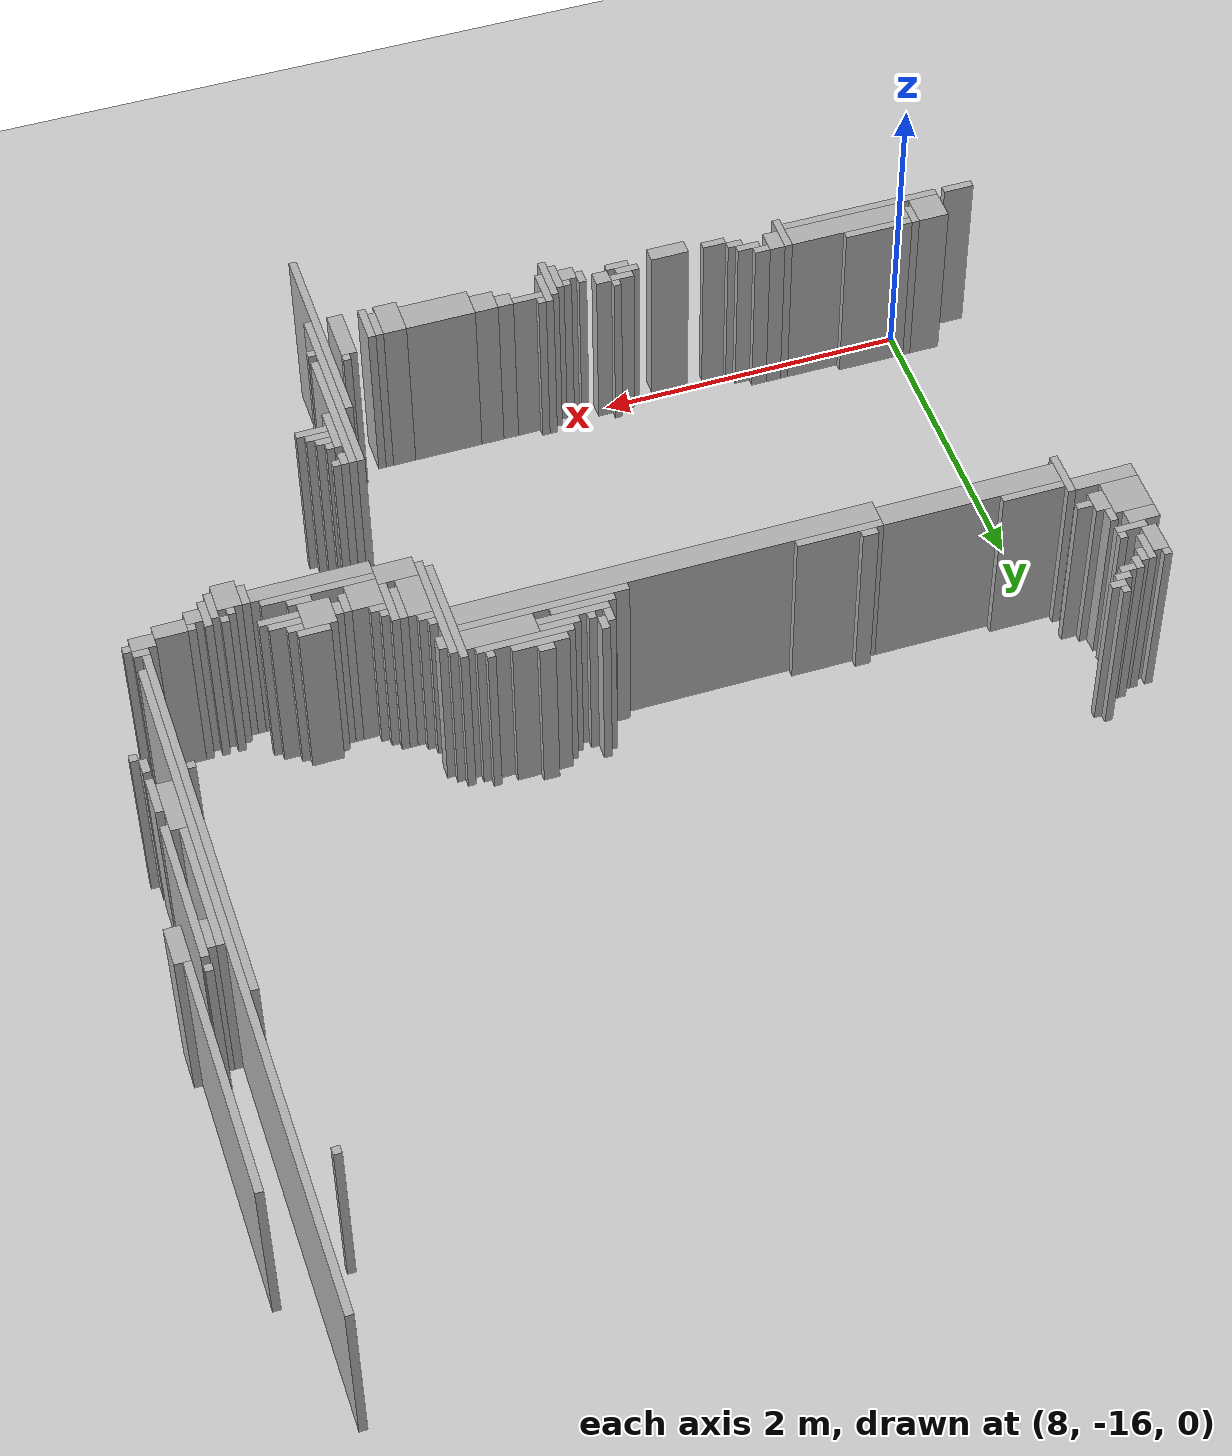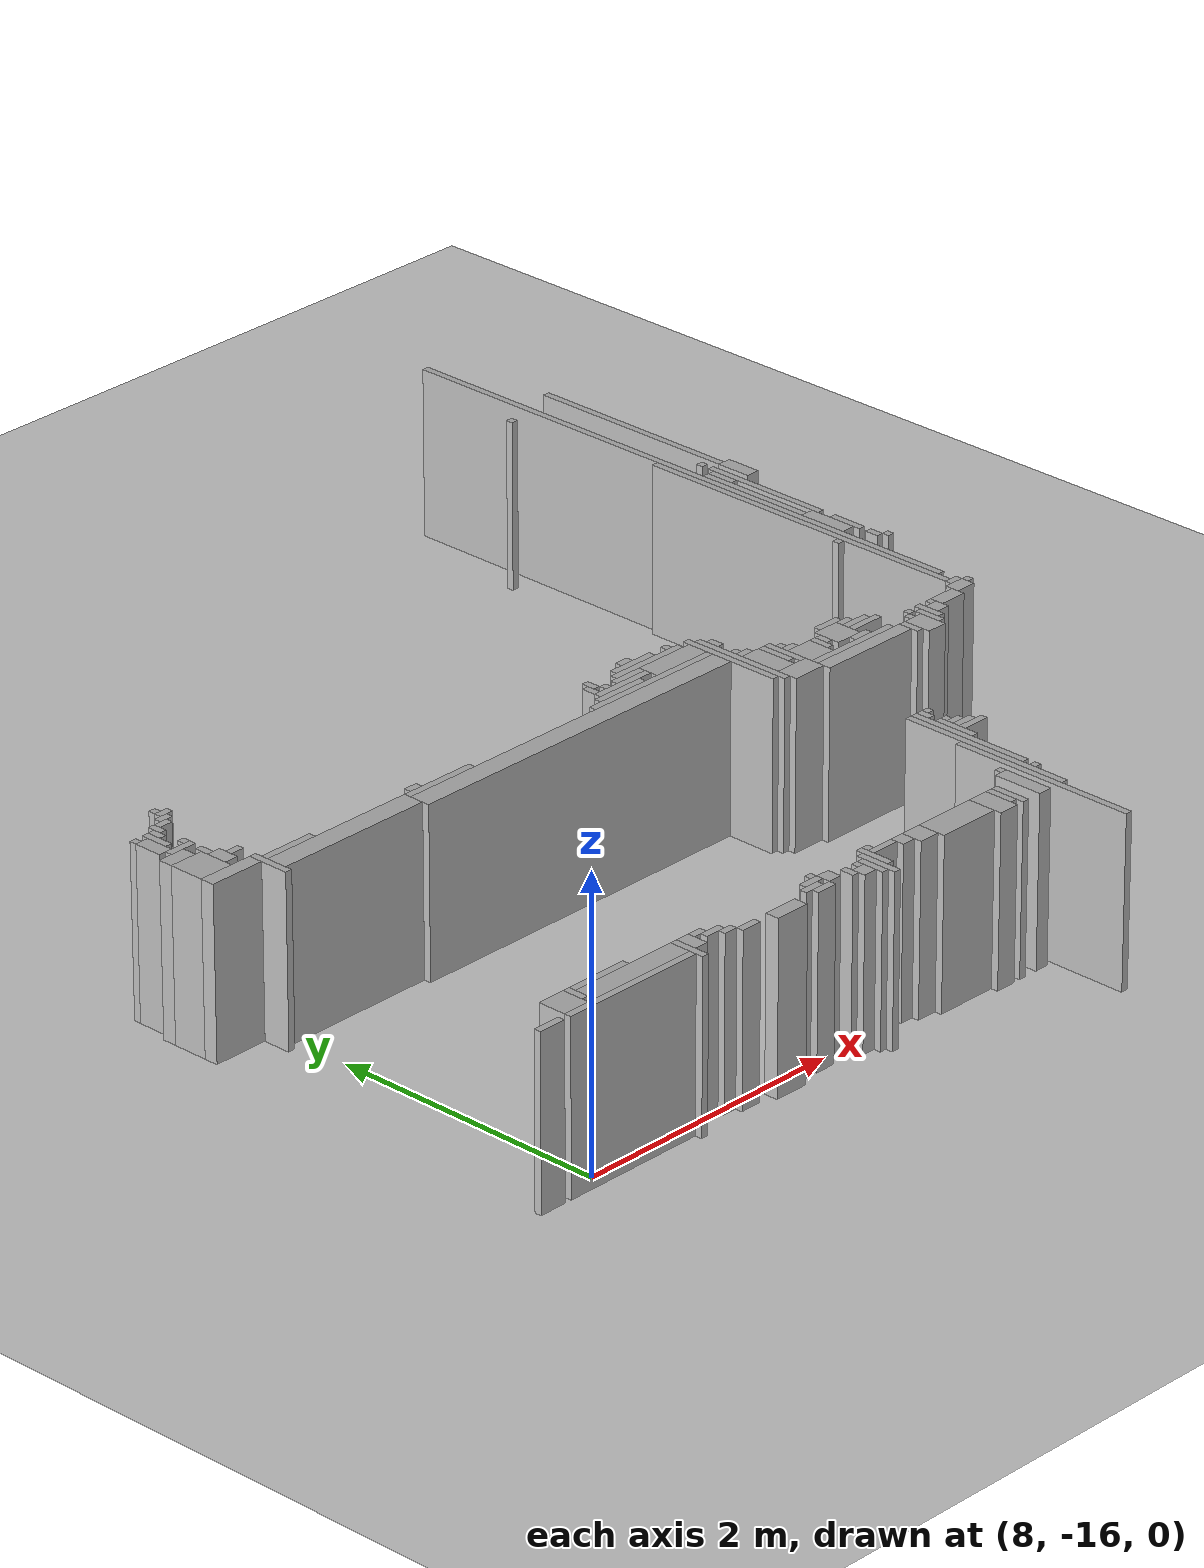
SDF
<sdf version="1.6">
 <world name="d10_floor">
  <include><uri>model://sun</uri></include>
  <include><uri>model://ground_plane</uri></include>
  <model name="d10_walls">
   <static>true</static>
   <link name="w265">
    <pose>11.850 -16.070 0.60 0 0 0</pose>
    <collision name="c"><geometry><box><size>0.050 1.350 1.20</size></box></geometry></collision>
    <visual name="v">
     <geometry><box><size>0.050 1.350 1.20</size></box></geometry>
     <material><ambient>0.6 0.6 0.6 1</ambient><diffuse>0.7 0.7 0.7 1</diffuse></material>
    </visual>
   </link>
   <link name="w337">
    <pose>10.350 -16.095 0.60 0 0 0</pose>
    <collision name="c"><geometry><box><size>0.050 0.300 1.20</size></box></geometry></collision>
    <visual name="v">
     <geometry><box><size>0.050 0.300 1.20</size></box></geometry>
     <material><ambient>0.6 0.6 0.6 1</ambient><diffuse>0.7 0.7 0.7 1</diffuse></material>
    </visual>
   </link>
   <link name="w356">
    <pose>10.300 -16.095 0.60 0 0 0</pose>
    <collision name="c"><geometry><box><size>0.050 0.200 1.20</size></box></geometry></collision>
    <visual name="v">
     <geometry><box><size>0.050 0.200 1.20</size></box></geometry>
     <material><ambient>0.6 0.6 0.6 1</ambient><diffuse>0.7 0.7 0.7 1</diffuse></material>
    </visual>
   </link>
   <link name="w357">
    <pose>11.400 -16.070 0.60 0 0 0</pose>
    <collision name="c"><geometry><box><size>0.150 0.250 1.20</size></box></geometry></collision>
    <visual name="v">
     <geometry><box><size>0.150 0.250 1.20</size></box></geometry>
     <material><ambient>0.6 0.6 0.6 1</ambient><diffuse>0.7 0.7 0.7 1</diffuse></material>
    </visual>
   </link>
   <link name="w358">
    <pose>11.550 -16.070 0.60 0 0 0</pose>
    <collision name="c"><geometry><box><size>0.050 0.250 1.20</size></box></geometry></collision>
    <visual name="v">
     <geometry><box><size>0.050 0.250 1.20</size></box></geometry>
     <material><ambient>0.6 0.6 0.6 1</ambient><diffuse>0.7 0.7 0.7 1</diffuse></material>
    </visual>
   </link>
   <link name="w359">
    <pose>11.725 -16.020 0.60 0 0 0</pose>
    <collision name="c"><geometry><box><size>0.100 0.350 1.20</size></box></geometry></collision>
    <visual name="v">
     <geometry><box><size>0.100 0.350 1.20</size></box></geometry>
     <material><ambient>0.6 0.6 0.6 1</ambient><diffuse>0.7 0.7 0.7 1</diffuse></material>
    </visual>
   </link>
   <link name="w360">
    <pose>11.900 -15.570 0.60 0 0 0</pose>
    <collision name="c"><geometry><box><size>0.050 1.250 1.20</size></box></geometry></collision>
    <visual name="v">
     <geometry><box><size>0.050 1.250 1.20</size></box></geometry>
     <material><ambient>0.6 0.6 0.6 1</ambient><diffuse>0.7 0.7 0.7 1</diffuse></material>
    </visual>
   </link>
   <link name="w388">
    <pose>8.800 -16.020 0.60 0 0 0</pose>
    <collision name="c"><geometry><box><size>0.050 0.250 1.20</size></box></geometry></collision>
    <visual name="v">
     <geometry><box><size>0.050 0.250 1.20</size></box></geometry>
     <material><ambient>0.6 0.6 0.6 1</ambient><diffuse>0.7 0.7 0.7 1</diffuse></material>
    </visual>
   </link>
   <link name="w389">
    <pose>9.550 -16.095 0.60 0 0 0</pose>
    <collision name="c"><geometry><box><size>0.250 0.100 1.20</size></box></geometry></collision>
    <visual name="v">
     <geometry><box><size>0.250 0.100 1.20</size></box></geometry>
     <material><ambient>0.6 0.6 0.6 1</ambient><diffuse>0.7 0.7 0.7 1</diffuse></material>
    </visual>
   </link>
   <link name="w390">
    <pose>10.225 -16.095 0.60 0 0 0</pose>
    <collision name="c"><geometry><box><size>0.100 0.100 1.20</size></box></geometry></collision>
    <visual name="v">
     <geometry><box><size>0.100 0.100 1.20</size></box></geometry>
     <material><ambient>0.6 0.6 0.6 1</ambient><diffuse>0.7 0.7 0.7 1</diffuse></material>
    </visual>
   </link>
   <link name="w391">
    <pose>10.400 -16.020 0.60 0 0 0</pose>
    <collision name="c"><geometry><box><size>0.050 0.250 1.20</size></box></geometry></collision>
    <visual name="v">
     <geometry><box><size>0.050 0.250 1.20</size></box></geometry>
     <material><ambient>0.6 0.6 0.6 1</ambient><diffuse>0.7 0.7 0.7 1</diffuse></material>
    </visual>
   </link>
   <link name="w392">
    <pose>11.100 -16.045 0.60 0 0 0</pose>
    <collision name="c"><geometry><box><size>0.450 0.200 1.20</size></box></geometry></collision>
    <visual name="v">
     <geometry><box><size>0.450 0.200 1.20</size></box></geometry>
     <material><ambient>0.6 0.6 0.6 1</ambient><diffuse>0.7 0.7 0.7 1</diffuse></material>
    </visual>
   </link>
   <link name="w393">
    <pose>11.500 -16.045 0.60 0 0 0</pose>
    <collision name="c"><geometry><box><size>0.050 0.200 1.20</size></box></geometry></collision>
    <visual name="v">
     <geometry><box><size>0.050 0.200 1.20</size></box></geometry>
     <material><ambient>0.6 0.6 0.6 1</ambient><diffuse>0.7 0.7 0.7 1</diffuse></material>
    </visual>
   </link>
   <link name="w420">
    <pose>7.575 -16.070 0.60 0 0 0</pose>
    <collision name="c"><geometry><box><size>0.200 0.050 1.20</size></box></geometry></collision>
    <visual name="v">
     <geometry><box><size>0.200 0.050 1.20</size></box></geometry>
     <material><ambient>0.6 0.6 0.6 1</ambient><diffuse>0.7 0.7 0.7 1</diffuse></material>
    </visual>
   </link>
   <link name="w421">
    <pose>8.250 -16.070 0.60 0 0 0</pose>
    <collision name="c"><geometry><box><size>1.050 0.050 1.20</size></box></geometry></collision>
    <visual name="v">
     <geometry><box><size>1.050 0.050 1.20</size></box></geometry>
     <material><ambient>0.6 0.6 0.6 1</ambient><diffuse>0.7 0.7 0.7 1</diffuse></material>
    </visual>
   </link>
   <link name="w422">
    <pose>9.250 -16.070 0.60 0 0 0</pose>
    <collision name="c"><geometry><box><size>0.150 0.050 1.20</size></box></geometry></collision>
    <visual name="v">
     <geometry><box><size>0.150 0.050 1.20</size></box></geometry>
     <material><ambient>0.6 0.6 0.6 1</ambient><diffuse>0.7 0.7 0.7 1</diffuse></material>
    </visual>
   </link>
   <link name="w423">
    <pose>9.900 -16.070 0.60 0 0 0</pose>
    <collision name="c"><geometry><box><size>0.150 0.050 1.20</size></box></geometry></collision>
    <visual name="v">
     <geometry><box><size>0.150 0.050 1.20</size></box></geometry>
     <material><ambient>0.6 0.6 0.6 1</ambient><diffuse>0.7 0.7 0.7 1</diffuse></material>
    </visual>
   </link>
   <link name="w424">
    <pose>10.150 -16.045 0.60 0 0 0</pose>
    <collision name="c"><geometry><box><size>0.050 0.100 1.20</size></box></geometry></collision>
    <visual name="v">
     <geometry><box><size>0.050 0.100 1.20</size></box></geometry>
     <material><ambient>0.6 0.6 0.6 1</ambient><diffuse>0.7 0.7 0.7 1</diffuse></material>
    </visual>
   </link>
   <link name="w425">
    <pose>10.800 -16.020 0.60 0 0 0</pose>
    <collision name="c"><geometry><box><size>0.150 0.150 1.20</size></box></geometry></collision>
    <visual name="v">
     <geometry><box><size>0.150 0.150 1.20</size></box></geometry>
     <material><ambient>0.6 0.6 0.6 1</ambient><diffuse>0.7 0.7 0.7 1</diffuse></material>
    </visual>
   </link>
   <link name="w445">
    <pose>7.825 -15.945 0.60 0 0 0</pose>
    <collision name="c"><geometry><box><size>0.200 0.200 1.20</size></box></geometry></collision>
    <visual name="v">
     <geometry><box><size>0.200 0.200 1.20</size></box></geometry>
     <material><ambient>0.6 0.6 0.6 1</ambient><diffuse>0.7 0.7 0.7 1</diffuse></material>
    </visual>
   </link>
   <link name="w446">
    <pose>8.375 -15.970 0.60 0 0 0</pose>
    <collision name="c"><geometry><box><size>0.800 0.150 1.20</size></box></geometry></collision>
    <visual name="v">
     <geometry><box><size>0.800 0.150 1.20</size></box></geometry>
     <material><ambient>0.6 0.6 0.6 1</ambient><diffuse>0.7 0.7 0.7 1</diffuse></material>
    </visual>
   </link>
   <link name="w447">
    <pose>8.875 -15.970 0.60 0 0 0</pose>
    <collision name="c"><geometry><box><size>0.100 0.150 1.20</size></box></geometry></collision>
    <visual name="v">
     <geometry><box><size>0.100 0.150 1.20</size></box></geometry>
     <material><ambient>0.6 0.6 0.6 1</ambient><diffuse>0.7 0.7 0.7 1</diffuse></material>
    </visual>
   </link>
   <link name="w448">
    <pose>9.125 -16.020 0.60 0 0 0</pose>
    <collision name="c"><geometry><box><size>0.100 0.050 1.20</size></box></geometry></collision>
    <visual name="v">
     <geometry><box><size>0.100 0.050 1.20</size></box></geometry>
     <material><ambient>0.6 0.6 0.6 1</ambient><diffuse>0.7 0.7 0.7 1</diffuse></material>
    </visual>
   </link>
   <link name="w449">
    <pose>9.850 -16.020 0.60 0 0 0</pose>
    <collision name="c"><geometry><box><size>0.150 0.050 1.20</size></box></geometry></collision>
    <visual name="v">
     <geometry><box><size>0.150 0.050 1.20</size></box></geometry>
     <material><ambient>0.6 0.6 0.6 1</ambient><diffuse>0.7 0.7 0.7 1</diffuse></material>
    </visual>
   </link>
   <link name="w450">
    <pose>10.025 -15.995 0.60 0 0 0</pose>
    <collision name="c"><geometry><box><size>0.100 0.100 1.20</size></box></geometry></collision>
    <visual name="v">
     <geometry><box><size>0.100 0.100 1.20</size></box></geometry>
     <material><ambient>0.6 0.6 0.6 1</ambient><diffuse>0.7 0.7 0.7 1</diffuse></material>
    </visual>
   </link>
   <link name="w451">
    <pose>10.250 -16.020 0.60 0 0 0</pose>
    <collision name="c"><geometry><box><size>0.050 0.050 1.20</size></box></geometry></collision>
    <visual name="v">
     <geometry><box><size>0.050 0.050 1.20</size></box></geometry>
     <material><ambient>0.6 0.6 0.6 1</ambient><diffuse>0.7 0.7 0.7 1</diffuse></material>
    </visual>
   </link>
   <link name="w452">
    <pose>10.675 -15.995 0.60 0 0 0</pose>
    <collision name="c"><geometry><box><size>0.100 0.100 1.20</size></box></geometry></collision>
    <visual name="v">
     <geometry><box><size>0.100 0.100 1.20</size></box></geometry>
     <material><ambient>0.6 0.6 0.6 1</ambient><diffuse>0.7 0.7 0.7 1</diffuse></material>
    </visual>
   </link>
   <link name="w464">
    <pose>7.950 -15.920 0.60 0 0 0</pose>
    <collision name="c"><geometry><box><size>0.050 0.150 1.20</size></box></geometry></collision>
    <visual name="v">
     <geometry><box><size>0.050 0.150 1.20</size></box></geometry>
     <material><ambient>0.6 0.6 0.6 1</ambient><diffuse>0.7 0.7 0.7 1</diffuse></material>
    </visual>
   </link>
   <link name="w465">
    <pose>9.050 -15.970 0.60 0 0 0</pose>
    <collision name="c"><geometry><box><size>0.150 0.050 1.20</size></box></geometry></collision>
    <visual name="v">
     <geometry><box><size>0.150 0.050 1.20</size></box></geometry>
     <material><ambient>0.6 0.6 0.6 1</ambient><diffuse>0.7 0.7 0.7 1</diffuse></material>
    </visual>
   </link>
   <link name="w466">
    <pose>9.900 -15.970 0.60 0 0 0</pose>
    <collision name="c"><geometry><box><size>0.150 0.050 1.20</size></box></geometry></collision>
    <visual name="v">
     <geometry><box><size>0.150 0.050 1.20</size></box></geometry>
     <material><ambient>0.6 0.6 0.6 1</ambient><diffuse>0.7 0.7 0.7 1</diffuse></material>
    </visual>
   </link>
   <link name="w467">
    <pose>10.525 -15.970 0.60 0 0 0</pose>
    <collision name="c"><geometry><box><size>0.200 0.050 1.20</size></box></geometry></collision>
    <visual name="v">
     <geometry><box><size>0.200 0.050 1.20</size></box></geometry>
     <material><ambient>0.6 0.6 0.6 1</ambient><diffuse>0.7 0.7 0.7 1</diffuse></material>
    </visual>
   </link>
   <link name="w483">
    <pose>8.975 -15.920 0.60 0 0 0</pose>
    <collision name="c"><geometry><box><size>0.100 0.050 1.20</size></box></geometry></collision>
    <visual name="v">
     <geometry><box><size>0.100 0.050 1.20</size></box></geometry>
     <material><ambient>0.6 0.6 0.6 1</ambient><diffuse>0.7 0.7 0.7 1</diffuse></material>
    </visual>
   </link>
   <link name="w484">
    <pose>9.950 -15.920 0.60 0 0 0</pose>
    <collision name="c"><geometry><box><size>0.050 0.050 1.20</size></box></geometry></collision>
    <visual name="v">
     <geometry><box><size>0.050 0.050 1.20</size></box></geometry>
     <material><ambient>0.6 0.6 0.6 1</ambient><diffuse>0.7 0.7 0.7 1</diffuse></material>
    </visual>
   </link>
   <link name="w485">
    <pose>10.450 -15.920 0.60 0 0 0</pose>
    <collision name="c"><geometry><box><size>0.050 0.050 1.20</size></box></geometry></collision>
    <visual name="v">
     <geometry><box><size>0.050 0.050 1.20</size></box></geometry>
     <material><ambient>0.6 0.6 0.6 1</ambient><diffuse>0.7 0.7 0.7 1</diffuse></material>
    </visual>
   </link>
   <link name="w486">
    <pose>11.950 -15.920 0.60 0 0 0</pose>
    <collision name="c"><geometry><box><size>0.050 0.050 1.20</size></box></geometry></collision>
    <visual name="v">
     <geometry><box><size>0.050 0.050 1.20</size></box></geometry>
     <material><ambient>0.6 0.6 0.6 1</ambient><diffuse>0.7 0.7 0.7 1</diffuse></material>
    </visual>
   </link>
   <link name="w495">
    <pose>8.200 -15.870 0.60 0 0 0</pose>
    <collision name="c"><geometry><box><size>0.450 0.050 1.20</size></box></geometry></collision>
    <visual name="v">
     <geometry><box><size>0.450 0.050 1.20</size></box></geometry>
     <material><ambient>0.6 0.6 0.6 1</ambient><diffuse>0.7 0.7 0.7 1</diffuse></material>
    </visual>
   </link>
   <link name="w501">
    <pose>11.750 -15.820 0.60 0 0 0</pose>
    <collision name="c"><geometry><box><size>0.050 0.050 1.20</size></box></geometry></collision>
    <visual name="v">
     <geometry><box><size>0.050 0.050 1.20</size></box></geometry>
     <material><ambient>0.6 0.6 0.6 1</ambient><diffuse>0.7 0.7 0.7 1</diffuse></material>
    </visual>
   </link>
   <link name="w502">
    <pose>11.950 -15.395 0.60 0 0 0</pose>
    <collision name="c"><geometry><box><size>0.050 0.900 1.20</size></box></geometry></collision>
    <visual name="v">
     <geometry><box><size>0.050 0.900 1.20</size></box></geometry>
     <material><ambient>0.6 0.6 0.6 1</ambient><diffuse>0.7 0.7 0.7 1</diffuse></material>
    </visual>
   </link>
   <link name="w556">
    <pose>12.000 -15.245 0.60 0 0 0</pose>
    <collision name="c"><geometry><box><size>0.050 0.300 1.20</size></box></geometry></collision>
    <visual name="v">
     <geometry><box><size>0.050 0.300 1.20</size></box></geometry>
     <material><ambient>0.6 0.6 0.6 1</ambient><diffuse>0.7 0.7 0.7 1</diffuse></material>
    </visual>
   </link>
   <link name="w559">
    <pose>12.125 -15.270 0.60 0 0 0</pose>
    <collision name="c"><geometry><box><size>0.200 0.050 1.20</size></box></geometry></collision>
    <visual name="v">
     <geometry><box><size>0.200 0.050 1.20</size></box></geometry>
     <material><ambient>0.6 0.6 0.6 1</ambient><diffuse>0.7 0.7 0.7 1</diffuse></material>
    </visual>
   </link>
   <link name="w560">
    <pose>12.100 -15.220 0.60 0 0 0</pose>
    <collision name="c"><geometry><box><size>0.150 0.050 1.20</size></box></geometry></collision>
    <visual name="v">
     <geometry><box><size>0.150 0.050 1.20</size></box></geometry>
     <material><ambient>0.6 0.6 0.6 1</ambient><diffuse>0.7 0.7 0.7 1</diffuse></material>
    </visual>
   </link>
   <link name="w562">
    <pose>12.075 -15.170 0.60 0 0 0</pose>
    <collision name="c"><geometry><box><size>0.100 0.050 1.20</size></box></geometry></collision>
    <visual name="v">
     <geometry><box><size>0.100 0.050 1.20</size></box></geometry>
     <material><ambient>0.6 0.6 0.6 1</ambient><diffuse>0.7 0.7 0.7 1</diffuse></material>
    </visual>
   </link>
   <link name="w563">
    <pose>12.050 -15.120 0.60 0 0 0</pose>
    <collision name="c"><geometry><box><size>0.050 0.050 1.20</size></box></geometry></collision>
    <visual name="v">
     <geometry><box><size>0.050 0.050 1.20</size></box></geometry>
     <material><ambient>0.6 0.6 0.6 1</ambient><diffuse>0.7 0.7 0.7 1</diffuse></material>
    </visual>
   </link>
   <link name="w565">
    <pose>12.000 -14.995 0.60 0 0 0</pose>
    <collision name="c"><geometry><box><size>0.050 0.100 1.20</size></box></geometry></collision>
    <visual name="v">
     <geometry><box><size>0.050 0.100 1.20</size></box></geometry>
     <material><ambient>0.6 0.6 0.6 1</ambient><diffuse>0.7 0.7 0.7 1</diffuse></material>
    </visual>
   </link>
   <link name="w567">
    <pose>12.050 -14.970 0.60 0 0 0</pose>
    <collision name="c"><geometry><box><size>0.050 0.050 1.20</size></box></geometry></collision>
    <visual name="v">
     <geometry><box><size>0.050 0.050 1.20</size></box></geometry>
     <material><ambient>0.6 0.6 0.6 1</ambient><diffuse>0.7 0.7 0.7 1</diffuse></material>
    </visual>
   </link>
   <link name="w583">
    <pose>12.950 -14.145 0.60 0 0 0</pose>
    <collision name="c"><geometry><box><size>0.150 0.200 1.20</size></box></geometry></collision>
    <visual name="v">
     <geometry><box><size>0.150 0.200 1.20</size></box></geometry>
     <material><ambient>0.6 0.6 0.6 1</ambient><diffuse>0.7 0.7 0.7 1</diffuse></material>
    </visual>
   </link>
   <link name="w585">
    <pose>12.850 -14.120 0.60 0 0 0</pose>
    <collision name="c"><geometry><box><size>0.050 0.150 1.20</size></box></geometry></collision>
    <visual name="v">
     <geometry><box><size>0.050 0.150 1.20</size></box></geometry>
     <material><ambient>0.6 0.6 0.6 1</ambient><diffuse>0.7 0.7 0.7 1</diffuse></material>
    </visual>
   </link>
   <link name="w586">
    <pose>13.050 -14.095 0.60 0 0 0</pose>
    <collision name="c"><geometry><box><size>0.050 0.200 1.20</size></box></geometry></collision>
    <visual name="v">
     <geometry><box><size>0.050 0.200 1.20</size></box></geometry>
     <material><ambient>0.6 0.6 0.6 1</ambient><diffuse>0.7 0.7 0.7 1</diffuse></material>
    </visual>
   </link>
   <link name="w587">
    <pose>12.450 -14.095 0.60 0 0 0</pose>
    <collision name="c"><geometry><box><size>0.750 0.100 1.20</size></box></geometry></collision>
    <visual name="v">
     <geometry><box><size>0.750 0.100 1.20</size></box></geometry>
     <material><ambient>0.6 0.6 0.6 1</ambient><diffuse>0.7 0.7 0.7 1</diffuse></material>
    </visual>
   </link>
   <link name="w588">
    <pose>13.100 -14.045 0.60 0 0 0</pose>
    <collision name="c"><geometry><box><size>0.050 0.200 1.20</size></box></geometry></collision>
    <visual name="v">
     <geometry><box><size>0.050 0.200 1.20</size></box></geometry>
     <material><ambient>0.6 0.6 0.6 1</ambient><diffuse>0.7 0.7 0.7 1</diffuse></material>
    </visual>
   </link>
   <link name="w589">
    <pose>11.950 -14.020 0.60 0 0 0</pose>
    <collision name="c"><geometry><box><size>0.250 0.150 1.20</size></box></geometry></collision>
    <visual name="v">
     <geometry><box><size>0.250 0.150 1.20</size></box></geometry>
     <material><ambient>0.6 0.6 0.6 1</ambient><diffuse>0.7 0.7 0.7 1</diffuse></material>
    </visual>
   </link>
   <link name="w590">
    <pose>13.175 -14.045 0.60 0 0 0</pose>
    <collision name="c"><geometry><box><size>0.100 0.100 1.20</size></box></geometry></collision>
    <visual name="v">
     <geometry><box><size>0.100 0.100 1.20</size></box></geometry>
     <material><ambient>0.6 0.6 0.6 1</ambient><diffuse>0.7 0.7 0.7 1</diffuse></material>
    </visual>
   </link>
   <link name="w592">
    <pose>11.800 -13.670 0.60 0 0 0</pose>
    <collision name="c"><geometry><box><size>0.050 0.750 1.20</size></box></geometry></collision>
    <visual name="v">
     <geometry><box><size>0.050 0.750 1.20</size></box></geometry>
     <material><ambient>0.6 0.6 0.6 1</ambient><diffuse>0.7 0.7 0.7 1</diffuse></material>
    </visual>
   </link>
   <link name="w593">
    <pose>12.425 -14.020 0.60 0 0 0</pose>
    <collision name="c"><geometry><box><size>0.700 0.050 1.20</size></box></geometry></collision>
    <visual name="v">
     <geometry><box><size>0.700 0.050 1.20</size></box></geometry>
     <material><ambient>0.6 0.6 0.6 1</ambient><diffuse>0.7 0.7 0.7 1</diffuse></material>
    </visual>
   </link>
   <link name="w594">
    <pose>12.950 -14.020 0.60 0 0 0</pose>
    <collision name="c"><geometry><box><size>0.050 0.050 1.20</size></box></geometry></collision>
    <visual name="v">
     <geometry><box><size>0.050 0.050 1.20</size></box></geometry>
     <material><ambient>0.6 0.6 0.6 1</ambient><diffuse>0.7 0.7 0.7 1</diffuse></material>
    </visual>
   </link>
   <link name="w595">
    <pose>13.325 -13.995 0.60 0 0 0</pose>
    <collision name="c"><geometry><box><size>0.200 0.100 1.20</size></box></geometry></collision>
    <visual name="v">
     <geometry><box><size>0.200 0.100 1.20</size></box></geometry>
     <material><ambient>0.6 0.6 0.6 1</ambient><diffuse>0.7 0.7 0.7 1</diffuse></material>
    </visual>
   </link>
   <link name="w596">
    <pose>11.750 -13.620 0.60 0 0 0</pose>
    <collision name="c"><geometry><box><size>0.050 0.750 1.20</size></box></geometry></collision>
    <visual name="v">
     <geometry><box><size>0.050 0.750 1.20</size></box></geometry>
     <material><ambient>0.6 0.6 0.6 1</ambient><diffuse>0.7 0.7 0.7 1</diffuse></material>
    </visual>
   </link>
   <link name="w597">
    <pose>12.175 -13.895 0.60 0 0 0</pose>
    <collision name="c"><geometry><box><size>0.200 0.200 1.20</size></box></geometry></collision>
    <visual name="v">
     <geometry><box><size>0.200 0.200 1.20</size></box></geometry>
     <material><ambient>0.6 0.6 0.6 1</ambient><diffuse>0.7 0.7 0.7 1</diffuse></material>
    </visual>
   </link>
   <link name="w598">
    <pose>12.550 -13.970 0.60 0 0 0</pose>
    <collision name="c"><geometry><box><size>0.150 0.050 1.20</size></box></geometry></collision>
    <visual name="v">
     <geometry><box><size>0.150 0.050 1.20</size></box></geometry>
     <material><ambient>0.6 0.6 0.6 1</ambient><diffuse>0.7 0.7 0.7 1</diffuse></material>
    </visual>
   </link>
   <link name="w599">
    <pose>13.000 -13.970 0.60 0 0 0</pose>
    <collision name="c"><geometry><box><size>0.050 0.050 1.20</size></box></geometry></collision>
    <visual name="v">
     <geometry><box><size>0.050 0.050 1.20</size></box></geometry>
     <material><ambient>0.6 0.6 0.6 1</ambient><diffuse>0.7 0.7 0.7 1</diffuse></material>
    </visual>
   </link>
   <link name="w600">
    <pose>13.200 -13.970 0.60 0 0 0</pose>
    <collision name="c"><geometry><box><size>0.050 0.050 1.20</size></box></geometry></collision>
    <visual name="v">
     <geometry><box><size>0.050 0.050 1.20</size></box></geometry>
     <material><ambient>0.6 0.6 0.6 1</ambient><diffuse>0.7 0.7 0.7 1</diffuse></material>
    </visual>
   </link>
   <link name="w601">
    <pose>13.500 -13.945 0.60 0 0 0</pose>
    <collision name="c"><geometry><box><size>0.150 0.100 1.20</size></box></geometry></collision>
    <visual name="v">
     <geometry><box><size>0.150 0.100 1.20</size></box></geometry>
     <material><ambient>0.6 0.6 0.6 1</ambient><diffuse>0.7 0.7 0.7 1</diffuse></material>
    </visual>
   </link>
   <link name="w603">
    <pose>11.900 -13.795 0.60 0 0 0</pose>
    <collision name="c"><geometry><box><size>0.150 0.300 1.20</size></box></geometry></collision>
    <visual name="v">
     <geometry><box><size>0.150 0.300 1.20</size></box></geometry>
     <material><ambient>0.6 0.6 0.6 1</ambient><diffuse>0.7 0.7 0.7 1</diffuse></material>
    </visual>
   </link>
   <link name="w604">
    <pose>12.050 -13.795 0.60 0 0 0</pose>
    <collision name="c"><geometry><box><size>0.050 0.300 1.20</size></box></geometry></collision>
    <visual name="v">
     <geometry><box><size>0.050 0.300 1.20</size></box></geometry>
     <material><ambient>0.6 0.6 0.6 1</ambient><diffuse>0.7 0.7 0.7 1</diffuse></material>
    </visual>
   </link>
   <link name="w605">
    <pose>12.300 -13.870 0.60 0 0 0</pose>
    <collision name="c"><geometry><box><size>0.050 0.150 1.20</size></box></geometry></collision>
    <visual name="v">
     <geometry><box><size>0.050 0.150 1.20</size></box></geometry>
     <material><ambient>0.6 0.6 0.6 1</ambient><diffuse>0.7 0.7 0.7 1</diffuse></material>
    </visual>
   </link>
   <link name="w606">
    <pose>12.475 -13.845 0.60 0 0 0</pose>
    <collision name="c"><geometry><box><size>0.200 0.200 1.20</size></box></geometry></collision>
    <visual name="v">
     <geometry><box><size>0.200 0.200 1.20</size></box></geometry>
     <material><ambient>0.6 0.6 0.6 1</ambient><diffuse>0.7 0.7 0.7 1</diffuse></material>
    </visual>
   </link>
   <link name="w607">
    <pose>13.600 -13.920 0.60 0 0 0</pose>
    <collision name="c"><geometry><box><size>0.050 0.050 1.20</size></box></geometry></collision>
    <visual name="v">
     <geometry><box><size>0.050 0.050 1.20</size></box></geometry>
     <material><ambient>0.6 0.6 0.6 1</ambient><diffuse>0.7 0.7 0.7 1</diffuse></material>
    </visual>
   </link>
   <link name="w608">
    <pose>12.000 -13.770 0.60 0 0 0</pose>
    <collision name="c"><geometry><box><size>0.050 0.250 1.20</size></box></geometry></collision>
    <visual name="v">
     <geometry><box><size>0.050 0.250 1.20</size></box></geometry>
     <material><ambient>0.6 0.6 0.6 1</ambient><diffuse>0.7 0.7 0.7 1</diffuse></material>
    </visual>
   </link>
   <link name="w609">
    <pose>12.350 -13.845 0.60 0 0 0</pose>
    <collision name="c"><geometry><box><size>0.050 0.100 1.20</size></box></geometry></collision>
    <visual name="v">
     <geometry><box><size>0.050 0.100 1.20</size></box></geometry>
     <material><ambient>0.6 0.6 0.6 1</ambient><diffuse>0.7 0.7 0.7 1</diffuse></material>
    </visual>
   </link>
   <link name="w610">
    <pose>12.700 -13.870 0.60 0 0 0</pose>
    <collision name="c"><geometry><box><size>0.250 0.050 1.20</size></box></geometry></collision>
    <visual name="v">
     <geometry><box><size>0.250 0.050 1.20</size></box></geometry>
     <material><ambient>0.6 0.6 0.6 1</ambient><diffuse>0.7 0.7 0.7 1</diffuse></material>
    </visual>
   </link>
   <link name="w611">
    <pose>13.525 -13.870 0.60 0 0 0</pose>
    <collision name="c"><geometry><box><size>0.100 0.050 1.20</size></box></geometry></collision>
    <visual name="v">
     <geometry><box><size>0.100 0.050 1.20</size></box></geometry>
     <material><ambient>0.6 0.6 0.6 1</ambient><diffuse>0.7 0.7 0.7 1</diffuse></material>
    </visual>
   </link>
   <link name="w614">
    <pose>12.675 -13.820 0.60 0 0 0</pose>
    <collision name="c"><geometry><box><size>0.200 0.050 1.20</size></box></geometry></collision>
    <visual name="v">
     <geometry><box><size>0.200 0.050 1.20</size></box></geometry>
     <material><ambient>0.6 0.6 0.6 1</ambient><diffuse>0.7 0.7 0.7 1</diffuse></material>
    </visual>
   </link>
   <link name="w615">
    <pose>13.500 -12.595 0.60 0 0 0</pose>
    <collision name="c"><geometry><box><size>0.050 2.500 1.20</size></box></geometry></collision>
    <visual name="v">
     <geometry><box><size>0.050 2.500 1.20</size></box></geometry>
     <material><ambient>0.6 0.6 0.6 1</ambient><diffuse>0.7 0.7 0.7 1</diffuse></material>
    </visual>
   </link>
   <link name="w620">
    <pose>12.125 -13.770 0.60 0 0 0</pose>
    <collision name="c"><geometry><box><size>0.100 0.050 1.20</size></box></geometry></collision>
    <visual name="v">
     <geometry><box><size>0.100 0.050 1.20</size></box></geometry>
     <material><ambient>0.6 0.6 0.6 1</ambient><diffuse>0.7 0.7 0.7 1</diffuse></material>
    </visual>
   </link>
   <link name="w621">
    <pose>12.625 -13.770 0.60 0 0 0</pose>
    <collision name="c"><geometry><box><size>0.100 0.050 1.20</size></box></geometry></collision>
    <visual name="v">
     <geometry><box><size>0.100 0.050 1.20</size></box></geometry>
     <material><ambient>0.6 0.6 0.6 1</ambient><diffuse>0.7 0.7 0.7 1</diffuse></material>
    </visual>
   </link>
   <link name="w628">
    <pose>12.100 -13.720 0.60 0 0 0</pose>
    <collision name="c"><geometry><box><size>0.050 0.050 1.20</size></box></geometry></collision>
    <visual name="v">
     <geometry><box><size>0.050 0.050 1.20</size></box></geometry>
     <material><ambient>0.6 0.6 0.6 1</ambient><diffuse>0.7 0.7 0.7 1</diffuse></material>
    </visual>
   </link>
   <link name="w629">
    <pose>12.525 -13.720 0.60 0 0 0</pose>
    <collision name="c"><geometry><box><size>0.200 0.050 1.20</size></box></geometry></collision>
    <visual name="v">
     <geometry><box><size>0.200 0.050 1.20</size></box></geometry>
     <material><ambient>0.6 0.6 0.6 1</ambient><diffuse>0.7 0.7 0.7 1</diffuse></material>
    </visual>
   </link>
   <link name="w630">
    <pose>13.550 -11.495 0.60 0 0 0</pose>
    <collision name="c"><geometry><box><size>0.050 4.500 1.20</size></box></geometry></collision>
    <visual name="v">
     <geometry><box><size>0.050 4.500 1.20</size></box></geometry>
     <material><ambient>0.6 0.6 0.6 1</ambient><diffuse>0.7 0.7 0.7 1</diffuse></material>
    </visual>
   </link>
   <link name="w648">
    <pose>7.900 -13.495 0.60 0 0 0</pose>
    <collision name="c"><geometry><box><size>0.050 0.300 1.20</size></box></geometry></collision>
    <visual name="v">
     <geometry><box><size>0.050 0.300 1.20</size></box></geometry>
     <material><ambient>0.6 0.6 0.6 1</ambient><diffuse>0.7 0.7 0.7 1</diffuse></material>
    </visual>
   </link>
   <link name="w649">
    <pose>10.400 -13.570 0.60 0 0 0</pose>
    <collision name="c"><geometry><box><size>2.650 0.150 1.20</size></box></geometry></collision>
    <visual name="v">
     <geometry><box><size>2.650 0.150 1.20</size></box></geometry>
     <material><ambient>0.6 0.6 0.6 1</ambient><diffuse>0.7 0.7 0.7 1</diffuse></material>
    </visual>
   </link>
   <link name="w650">
    <pose>11.875 -13.620 0.60 0 0 0</pose>
    <collision name="c"><geometry><box><size>0.100 0.050 1.20</size></box></geometry></collision>
    <visual name="v">
     <geometry><box><size>0.100 0.050 1.20</size></box></geometry>
     <material><ambient>0.6 0.6 0.6 1</ambient><diffuse>0.7 0.7 0.7 1</diffuse></material>
    </visual>
   </link>
   <link name="w658">
    <pose>8.500 -13.520 0.60 0 0 0</pose>
    <collision name="c"><geometry><box><size>1.150 0.150 1.20</size></box></geometry></collision>
    <visual name="v">
     <geometry><box><size>1.150 0.150 1.20</size></box></geometry>
     <material><ambient>0.6 0.6 0.6 1</ambient><diffuse>0.7 0.7 0.7 1</diffuse></material>
    </visual>
   </link>
   <link name="w659">
    <pose>11.850 -13.570 0.60 0 0 0</pose>
    <collision name="c"><geometry><box><size>0.050 0.050 1.20</size></box></geometry></collision>
    <visual name="v">
     <geometry><box><size>0.050 0.050 1.20</size></box></geometry>
     <material><ambient>0.6 0.6 0.6 1</ambient><diffuse>0.7 0.7 0.7 1</diffuse></material>
    </visual>
   </link>
   <link name="w667">
    <pose>9.350 -13.470 0.60 0 0 0</pose>
    <collision name="c"><geometry><box><size>0.550 0.050 1.20</size></box></geometry></collision>
    <visual name="v">
     <geometry><box><size>0.550 0.050 1.20</size></box></geometry>
     <material><ambient>0.6 0.6 0.6 1</ambient><diffuse>0.7 0.7 0.7 1</diffuse></material>
    </visual>
   </link>
   <link name="w668">
    <pose>11.200 -13.470 0.60 0 0 0</pose>
    <collision name="c"><geometry><box><size>1.050 0.050 1.20</size></box></geometry></collision>
    <visual name="v">
     <geometry><box><size>1.050 0.050 1.20</size></box></geometry>
     <material><ambient>0.6 0.6 0.6 1</ambient><diffuse>0.7 0.7 0.7 1</diffuse></material>
    </visual>
   </link>
   <link name="w677">
    <pose>7.675 -13.395 0.60 0 0 0</pose>
    <collision name="c"><geometry><box><size>0.400 0.100 1.20</size></box></geometry></collision>
    <visual name="v">
     <geometry><box><size>0.400 0.100 1.20</size></box></geometry>
     <material><ambient>0.6 0.6 0.6 1</ambient><diffuse>0.7 0.7 0.7 1</diffuse></material>
    </visual>
   </link>
   <link name="w678">
    <pose>8.125 -13.420 0.60 0 0 0</pose>
    <collision name="c"><geometry><box><size>0.400 0.050 1.20</size></box></geometry></collision>
    <visual name="v">
     <geometry><box><size>0.400 0.050 1.20</size></box></geometry>
     <material><ambient>0.6 0.6 0.6 1</ambient><diffuse>0.7 0.7 0.7 1</diffuse></material>
    </visual>
   </link>
   <link name="w679">
    <pose>9.175 -13.420 0.60 0 0 0</pose>
    <collision name="c"><geometry><box><size>0.100 0.050 1.20</size></box></geometry></collision>
    <visual name="v">
     <geometry><box><size>0.100 0.050 1.20</size></box></geometry>
     <material><ambient>0.6 0.6 0.6 1</ambient><diffuse>0.7 0.7 0.7 1</diffuse></material>
    </visual>
   </link>
   <link name="w680">
    <pose>10.975 -13.420 0.60 0 0 0</pose>
    <collision name="c"><geometry><box><size>0.400 0.050 1.20</size></box></geometry></collision>
    <visual name="v">
     <geometry><box><size>0.400 0.050 1.20</size></box></geometry>
     <material><ambient>0.6 0.6 0.6 1</ambient><diffuse>0.7 0.7 0.7 1</diffuse></material>
    </visual>
   </link>
   <link name="w681">
    <pose>11.500 -13.370 0.60 0 0 0</pose>
    <collision name="c"><geometry><box><size>0.450 0.150 1.20</size></box></geometry></collision>
    <visual name="v">
     <geometry><box><size>0.450 0.150 1.20</size></box></geometry>
     <material><ambient>0.6 0.6 0.6 1</ambient><diffuse>0.7 0.7 0.7 1</diffuse></material>
    </visual>
   </link>
   <link name="w682">
    <pose>11.850 -13.395 0.60 0 0 0</pose>
    <collision name="c"><geometry><box><size>0.050 0.100 1.20</size></box></geometry></collision>
    <visual name="v">
     <geometry><box><size>0.050 0.100 1.20</size></box></geometry>
     <material><ambient>0.6 0.6 0.6 1</ambient><diffuse>0.7 0.7 0.7 1</diffuse></material>
    </visual>
   </link>
   <link name="w686">
    <pose>11.050 -13.370 0.60 0 0 0</pose>
    <collision name="c"><geometry><box><size>0.450 0.050 1.20</size></box></geometry></collision>
    <visual name="v">
     <geometry><box><size>0.450 0.050 1.20</size></box></geometry>
     <material><ambient>0.6 0.6 0.6 1</ambient><diffuse>0.7 0.7 0.7 1</diffuse></material>
    </visual>
   </link>
   <link name="w698">
    <pose>7.600 -13.220 0.60 0 0 0</pose>
    <collision name="c"><geometry><box><size>0.250 0.250 1.20</size></box></geometry></collision>
    <visual name="v">
     <geometry><box><size>0.250 0.250 1.20</size></box></geometry>
     <material><ambient>0.6 0.6 0.6 1</ambient><diffuse>0.7 0.7 0.7 1</diffuse></material>
    </visual>
   </link>
   <link name="w699">
    <pose>10.850 -13.295 0.60 0 0 0</pose>
    <collision name="c"><geometry><box><size>0.050 0.100 1.20</size></box></geometry></collision>
    <visual name="v">
     <geometry><box><size>0.050 0.100 1.20</size></box></geometry>
     <material><ambient>0.6 0.6 0.6 1</ambient><diffuse>0.7 0.7 0.7 1</diffuse></material>
    </visual>
   </link>
   <link name="w700">
    <pose>10.950 -13.320 0.60 0 0 0</pose>
    <collision name="c"><geometry><box><size>0.050 0.050 1.20</size></box></geometry></collision>
    <visual name="v">
     <geometry><box><size>0.050 0.050 1.20</size></box></geometry>
     <material><ambient>0.6 0.6 0.6 1</ambient><diffuse>0.7 0.7 0.7 1</diffuse></material>
    </visual>
   </link>
   <link name="w701">
    <pose>11.150 -13.320 0.60 0 0 0</pose>
    <collision name="c"><geometry><box><size>0.250 0.050 1.20</size></box></geometry></collision>
    <visual name="v">
     <geometry><box><size>0.250 0.050 1.20</size></box></geometry>
     <material><ambient>0.6 0.6 0.6 1</ambient><diffuse>0.7 0.7 0.7 1</diffuse></material>
    </visual>
   </link>
   <link name="w721">
    <pose>7.775 -13.220 0.60 0 0 0</pose>
    <collision name="c"><geometry><box><size>0.100 0.150 1.20</size></box></geometry></collision>
    <visual name="v">
     <geometry><box><size>0.100 0.150 1.20</size></box></geometry>
     <material><ambient>0.6 0.6 0.6 1</ambient><diffuse>0.7 0.7 0.7 1</diffuse></material>
    </visual>
   </link>
   <link name="w722">
    <pose>10.900 -13.245 0.60 0 0 0</pose>
    <collision name="c"><geometry><box><size>0.050 0.100 1.20</size></box></geometry></collision>
    <visual name="v">
     <geometry><box><size>0.050 0.100 1.20</size></box></geometry>
     <material><ambient>0.6 0.6 0.6 1</ambient><diffuse>0.7 0.7 0.7 1</diffuse></material>
    </visual>
   </link>
   <link name="w723">
    <pose>11.375 -13.270 0.60 0 0 0</pose>
    <collision name="c"><geometry><box><size>0.600 0.050 1.20</size></box></geometry></collision>
    <visual name="v">
     <geometry><box><size>0.600 0.050 1.20</size></box></geometry>
     <material><ambient>0.6 0.6 0.6 1</ambient><diffuse>0.7 0.7 0.7 1</diffuse></material>
    </visual>
   </link>
   <link name="w743">
    <pose>7.875 -13.220 0.60 0 0 0</pose>
    <collision name="c"><geometry><box><size>0.100 0.050 1.20</size></box></geometry></collision>
    <visual name="v">
     <geometry><box><size>0.100 0.050 1.20</size></box></geometry>
     <material><ambient>0.6 0.6 0.6 1</ambient><diffuse>0.7 0.7 0.7 1</diffuse></material>
    </visual>
   </link>
   <link name="w744">
    <pose>11.300 -13.220 0.60 0 0 0</pose>
    <collision name="c"><geometry><box><size>0.350 0.050 1.20</size></box></geometry></collision>
    <visual name="v">
     <geometry><box><size>0.350 0.050 1.20</size></box></geometry>
     <material><ambient>0.6 0.6 0.6 1</ambient><diffuse>0.7 0.7 0.7 1</diffuse></material>
    </visual>
   </link>
   <link name="w745">
    <pose>11.600 -13.220 0.60 0 0 0</pose>
    <collision name="c"><geometry><box><size>0.050 0.050 1.20</size></box></geometry></collision>
    <visual name="v">
     <geometry><box><size>0.050 0.050 1.20</size></box></geometry>
     <material><ambient>0.6 0.6 0.6 1</ambient><diffuse>0.7 0.7 0.7 1</diffuse></material>
    </visual>
   </link>
   <link name="w784">
    <pose>11.275 -13.170 0.60 0 0 0</pose>
    <collision name="c"><geometry><box><size>0.100 0.050 1.20</size></box></geometry></collision>
    <visual name="v">
     <geometry><box><size>0.100 0.050 1.20</size></box></geometry>
     <material><ambient>0.6 0.6 0.6 1</ambient><diffuse>0.7 0.7 0.7 1</diffuse></material>
    </visual>
   </link>
   <link name="w814">
    <pose>7.750 -13.095 0.60 0 0 0</pose>
    <collision name="c"><geometry><box><size>0.050 0.100 1.20</size></box></geometry></collision>
    <visual name="v">
     <geometry><box><size>0.050 0.100 1.20</size></box></geometry>
     <material><ambient>0.6 0.6 0.6 1</ambient><diffuse>0.7 0.7 0.7 1</diffuse></material>
    </visual>
   </link>
   <link name="w815">
    <pose>13.750 -13.120 0.60 0 0 0</pose>
    <collision name="c"><geometry><box><size>0.050 0.050 1.20</size></box></geometry></collision>
    <visual name="v">
     <geometry><box><size>0.050 0.050 1.20</size></box></geometry>
     <material><ambient>0.6 0.6 0.6 1</ambient><diffuse>0.7 0.7 0.7 1</diffuse></material>
    </visual>
   </link>
   <link name="w832">
    <pose>7.575 -13.045 0.60 0 0 0</pose>
    <collision name="c"><geometry><box><size>0.200 0.100 1.20</size></box></geometry></collision>
    <visual name="v">
     <geometry><box><size>0.200 0.100 1.20</size></box></geometry>
     <material><ambient>0.6 0.6 0.6 1</ambient><diffuse>0.7 0.7 0.7 1</diffuse></material>
    </visual>
   </link>
   <link name="w833">
    <pose>13.700 -13.045 0.60 0 0 0</pose>
    <collision name="c"><geometry><box><size>0.050 0.100 1.20</size></box></geometry></collision>
    <visual name="v">
     <geometry><box><size>0.050 0.100 1.20</size></box></geometry>
     <material><ambient>0.6 0.6 0.6 1</ambient><diffuse>0.7 0.7 0.7 1</diffuse></material>
    </visual>
   </link>
   <link name="w854">
    <pose>7.675 -12.970 0.60 0 0 0</pose>
    <collision name="c"><geometry><box><size>0.200 0.050 1.20</size></box></geometry></collision>
    <visual name="v">
     <geometry><box><size>0.200 0.050 1.20</size></box></geometry>
     <material><ambient>0.6 0.6 0.6 1</ambient><diffuse>0.7 0.7 0.7 1</diffuse></material>
    </visual>
   </link>
   <link name="w855">
    <pose>13.450 -12.970 0.60 0 0 0</pose>
    <collision name="c"><geometry><box><size>0.050 0.050 1.20</size></box></geometry></collision>
    <visual name="v">
     <geometry><box><size>0.050 0.050 1.20</size></box></geometry>
     <material><ambient>0.6 0.6 0.6 1</ambient><diffuse>0.7 0.7 0.7 1</diffuse></material>
    </visual>
   </link>
   <link name="w862">
    <pose>7.575 -12.845 0.60 0 0 0</pose>
    <collision name="c"><geometry><box><size>0.100 0.200 1.20</size></box></geometry></collision>
    <visual name="v">
     <geometry><box><size>0.100 0.200 1.20</size></box></geometry>
     <material><ambient>0.6 0.6 0.6 1</ambient><diffuse>0.7 0.7 0.7 1</diffuse></material>
    </visual>
   </link>
   <link name="w863">
    <pose>7.750 -12.920 0.60 0 0 0</pose>
    <collision name="c"><geometry><box><size>0.050 0.050 1.20</size></box></geometry></collision>
    <visual name="v">
     <geometry><box><size>0.050 0.050 1.20</size></box></geometry>
     <material><ambient>0.6 0.6 0.6 1</ambient><diffuse>0.7 0.7 0.7 1</diffuse></material>
    </visual>
   </link>
   <link name="w864">
    <pose>13.700 -12.820 0.60 0 0 0</pose>
    <collision name="c"><geometry><box><size>0.050 0.250 1.20</size></box></geometry></collision>
    <visual name="v">
     <geometry><box><size>0.050 0.250 1.20</size></box></geometry>
     <material><ambient>0.6 0.6 0.6 1</ambient><diffuse>0.7 0.7 0.7 1</diffuse></material>
    </visual>
   </link>
   <link name="w868">
    <pose>7.650 -12.795 0.60 0 0 0</pose>
    <collision name="c"><geometry><box><size>0.050 0.200 1.20</size></box></geometry></collision>
    <visual name="v">
     <geometry><box><size>0.050 0.200 1.20</size></box></geometry>
     <material><ambient>0.6 0.6 0.6 1</ambient><diffuse>0.7 0.7 0.7 1</diffuse></material>
    </visual>
   </link>
   <link name="w869">
    <pose>13.625 -12.720 0.60 0 0 0</pose>
    <collision name="c"><geometry><box><size>0.100 0.350 1.20</size></box></geometry></collision>
    <visual name="v">
     <geometry><box><size>0.100 0.350 1.20</size></box></geometry>
     <material><ambient>0.6 0.6 0.6 1</ambient><diffuse>0.7 0.7 0.7 1</diffuse></material>
    </visual>
   </link>
   <link name="w878">
    <pose>7.700 -12.745 0.60 0 0 0</pose>
    <collision name="c"><geometry><box><size>0.050 0.100 1.20</size></box></geometry></collision>
    <visual name="v">
     <geometry><box><size>0.050 0.100 1.20</size></box></geometry>
     <material><ambient>0.6 0.6 0.6 1</ambient><diffuse>0.7 0.7 0.7 1</diffuse></material>
    </visual>
   </link>
   <link name="w881">
    <pose>7.550 -12.720 0.60 0 0 0</pose>
    <collision name="c"><geometry><box><size>0.050 0.050 1.20</size></box></geometry></collision>
    <visual name="v">
     <geometry><box><size>0.050 0.050 1.20</size></box></geometry>
     <material><ambient>0.6 0.6 0.6 1</ambient><diffuse>0.7 0.7 0.7 1</diffuse></material>
    </visual>
   </link>
   <link name="w882">
    <pose>7.750 -12.695 0.60 0 0 0</pose>
    <collision name="c"><geometry><box><size>0.050 0.100 1.20</size></box></geometry></collision>
    <visual name="v">
     <geometry><box><size>0.050 0.100 1.20</size></box></geometry>
     <material><ambient>0.6 0.6 0.6 1</ambient><diffuse>0.7 0.7 0.7 1</diffuse></material>
    </visual>
   </link>
   <link name="w885">
    <pose>7.825 -12.670 0.60 0 0 0</pose>
    <collision name="c"><geometry><box><size>0.100 0.050 1.20</size></box></geometry></collision>
    <visual name="v">
     <geometry><box><size>0.100 0.050 1.20</size></box></geometry>
     <material><ambient>0.6 0.6 0.6 1</ambient><diffuse>0.7 0.7 0.7 1</diffuse></material>
    </visual>
   </link>
   <link name="w887">
    <pose>7.875 -12.620 0.60 0 0 0</pose>
    <collision name="c"><geometry><box><size>0.100 0.050 1.20</size></box></geometry></collision>
    <visual name="v">
     <geometry><box><size>0.100 0.050 1.20</size></box></geometry>
     <material><ambient>0.6 0.6 0.6 1</ambient><diffuse>0.7 0.7 0.7 1</diffuse></material>
    </visual>
   </link>
   <link name="w888">
    <pose>7.925 -12.570 0.60 0 0 0</pose>
    <collision name="c"><geometry><box><size>0.100 0.050 1.20</size></box></geometry></collision>
    <visual name="v">
     <geometry><box><size>0.100 0.050 1.20</size></box></geometry>
     <material><ambient>0.6 0.6 0.6 1</ambient><diffuse>0.7 0.7 0.7 1</diffuse></material>
    </visual>
   </link>
   <link name="w889">
    <pose>13.700 -12.120 0.60 0 0 0</pose>
    <collision name="c"><geometry><box><size>0.050 0.950 1.20</size></box></geometry></collision>
    <visual name="v">
     <geometry><box><size>0.050 0.950 1.20</size></box></geometry>
     <material><ambient>0.6 0.6 0.6 1</ambient><diffuse>0.7 0.7 0.7 1</diffuse></material>
    </visual>
   </link>
   <link name="w890">
    <pose>7.900 -12.520 0.60 0 0 0</pose>
    <collision name="c"><geometry><box><size>0.050 0.050 1.20</size></box></geometry></collision>
    <visual name="v">
     <geometry><box><size>0.050 0.050 1.20</size></box></geometry>
     <material><ambient>0.6 0.6 0.6 1</ambient><diffuse>0.7 0.7 0.7 1</diffuse></material>
    </visual>
   </link>
   <link name="w891">
    <pose>13.600 -12.120 0.60 0 0 0</pose>
    <collision name="c"><geometry><box><size>0.050 0.850 1.20</size></box></geometry></collision>
    <visual name="v">
     <geometry><box><size>0.050 0.850 1.20</size></box></geometry>
     <material><ambient>0.6 0.6 0.6 1</ambient><diffuse>0.7 0.7 0.7 1</diffuse></material>
    </visual>
   </link>
   <link name="w928">
    <pose>13.650 -11.795 0.60 0 0 0</pose>
    <collision name="c"><geometry><box><size>0.050 0.200 1.20</size></box></geometry></collision>
    <visual name="v">
     <geometry><box><size>0.050 0.200 1.20</size></box></geometry>
     <material><ambient>0.6 0.6 0.6 1</ambient><diffuse>0.7 0.7 0.7 1</diffuse></material>
    </visual>
   </link>
   <link name="w929">
    <pose>13.825 -11.770 0.60 0 0 0</pose>
    <collision name="c"><geometry><box><size>0.100 0.250 1.20</size></box></geometry></collision>
    <visual name="v">
     <geometry><box><size>0.100 0.250 1.20</size></box></geometry>
     <material><ambient>0.6 0.6 0.6 1</ambient><diffuse>0.7 0.7 0.7 1</diffuse></material>
    </visual>
   </link>
   <link name="w956">
    <pose>13.800 -10.870 0.60 0 0 0</pose>
    <collision name="c"><geometry><box><size>0.050 1.550 1.20</size></box></geometry></collision>
    <visual name="v">
     <geometry><box><size>0.050 1.550 1.20</size></box></geometry>
     <material><ambient>0.6 0.6 0.6 1</ambient><diffuse>0.7 0.7 0.7 1</diffuse></material>
    </visual>
   </link>
   <link name="w964">
    <pose>13.700 -11.570 0.60 0 0 0</pose>
    <collision name="c"><geometry><box><size>0.050 0.050 1.20</size></box></geometry></collision>
    <visual name="v">
     <geometry><box><size>0.050 0.050 1.20</size></box></geometry>
     <material><ambient>0.6 0.6 0.6 1</ambient><diffuse>0.7 0.7 0.7 1</diffuse></material>
    </visual>
   </link>
   <link name="w1041">
    <pose>13.350 -10.220 0.60 0 0 0</pose>
    <collision name="c"><geometry><box><size>0.050 0.050 1.20</size></box></geometry></collision>
    <visual name="v">
     <geometry><box><size>0.050 0.050 1.20</size></box></geometry>
     <material><ambient>0.6 0.6 0.6 1</ambient><diffuse>0.7 0.7 0.7 1</diffuse></material>
    </visual>
   </link>
  </model>
 </world>
</sdf>
